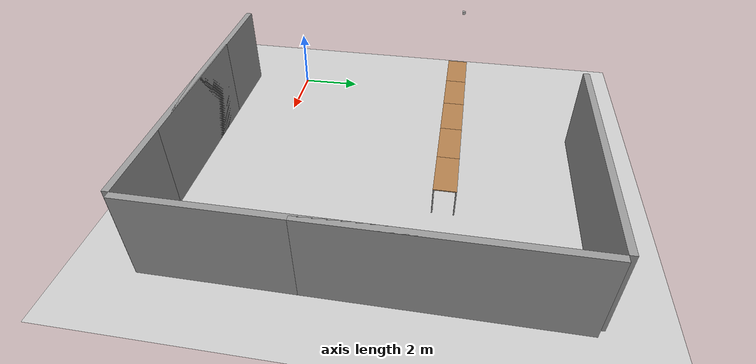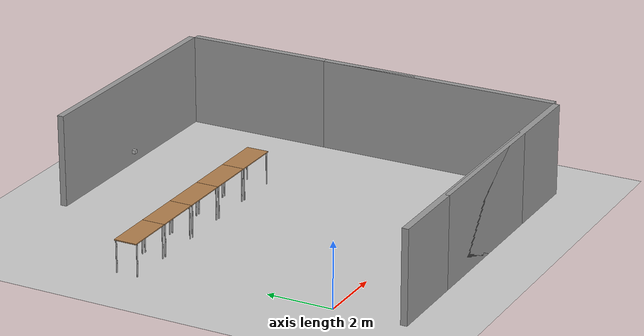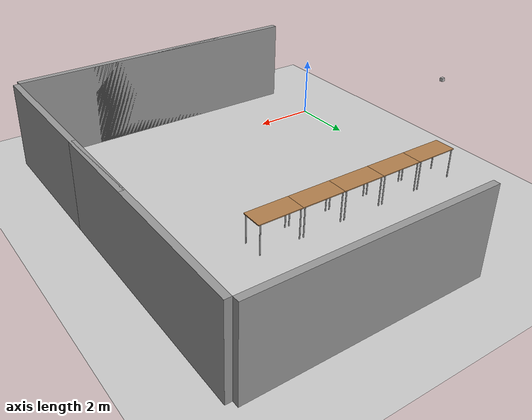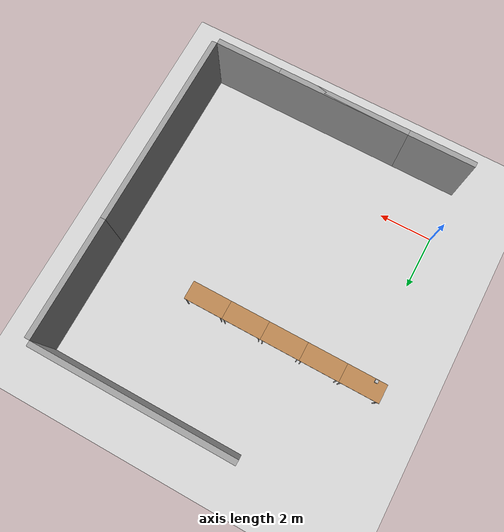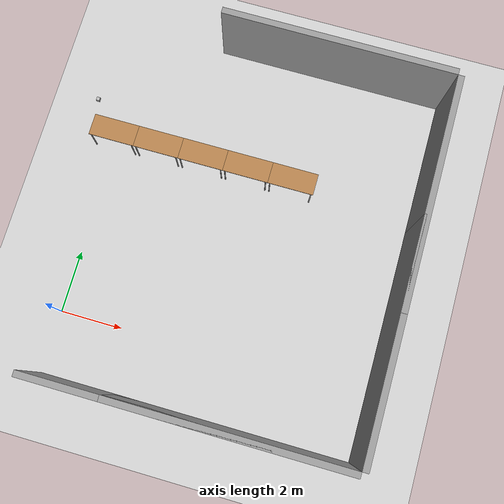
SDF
<sdf version="1.6">
 <world name="default">
  <model name="ground_plane">
   <static>1</static>
   <link name="link">
    <collision name="collision">
     <geometry><plane><normal>0 0 1</normal><size>100 100</size></plane></geometry>
     <surface>
      <contact><collide_bitmask>65535</collide_bitmask></contact>
      <friction><ode><mu>100</mu><mu2>50</mu2></ode></friction>
     </surface>
    </collision>
    <visual name="visual">
     <cast_shadows>0</cast_shadows>
     <geometry><plane><normal>0 0 1</normal><size>100 100</size></plane></geometry>
     <material>
      <script><uri>file://media/materials/scripts/gazebo.material</uri><name>Gazebo/Grey</name></script>
     </material>
    </visual>
   </link>
  </model>
  <model name="grey_wall_0">
   <static>1</static>
   <link name="link">
    <pose>0 0 1.4 0 -0 0</pose>
    <collision name="collision"><geometry><box><size>7.5 0.2 2.8</size></box></geometry></collision>
    <visual name="visual">
     <cast_shadows>0</cast_shadows>
     <geometry><box><size>7.5 0.2 2.8</size></box></geometry>
     <material>
      <script>
       <uri>model://grey_wall/materials/scripts</uri>
       <uri>model://grey_wall/materials/textures</uri>
       <name>vrc/grey_wall</name>
      </script>
     </material>
    </visual>
   </link>
   <pose>3.75 -2.1 0 0 -0 0</pose>
  </model>
  <model name="grey_wall_2">
   <static>1</static>
   <link name="link">
    <pose>0 0 1.4 0 -0 0</pose>
    <collision name="collision"><geometry><box><size>7.5 0.2 2.8</size></box></geometry></collision>
    <visual name="visual">
     <cast_shadows>0</cast_shadows>
     <geometry><box><size>7.5 0.2 2.8</size></box></geometry>
     <material>
      <script>
       <uri>model://grey_wall/materials/scripts</uri>
       <uri>model://grey_wall/materials/textures</uri>
       <name>vrc/grey_wall</name>
      </script>
     </material>
    </visual>
   </link>
   <pose>6.25 -2.1 0 0 -0 0</pose>
  </model>
  <model name="grey_wall_3_clone_clone">
   <static>1</static>
   <link name="link">
    <pose>0 0 1.4 0 -0 0</pose>
    <collision name="collision"><geometry><box><size>7.5 0.2 2.8</size></box></geometry></collision>
    <visual name="visual">
     <cast_shadows>0</cast_shadows>
     <geometry><box><size>7.5 0.2 2.8</size></box></geometry>
     <material>
      <script>
       <uri>model://grey_wall/materials/scripts</uri>
       <uri>model://grey_wall/materials/textures</uri>
       <name>vrc/grey_wall</name>
      </script>
     </material>
    </visual>
   </link>
   <pose>10.1 6.25 0 0 -0 1.5708</pose>
  </model>
  <model name="grey_wall_3_clone_clone_0">
   <static>1</static>
   <link name="link">
    <pose>0 0 1.4 0 -0 0</pose>
    <collision name="collision"><geometry><box><size>7.5 0.2 2.8</size></box></geometry></collision>
    <visual name="visual">
     <cast_shadows>0</cast_shadows>
     <geometry><box><size>7.5 0.2 2.8</size></box></geometry>
     <material>
      <script>
       <uri>model://grey_wall/materials/scripts</uri>
       <uri>model://grey_wall/materials/textures</uri>
       <name>vrc/grey_wall</name>
      </script>
     </material>
    </visual>
   </link>
   <pose>10.1 1.75 0 0 -0 1.5708</pose>
  </model>
  <model name="grey_wall_clone_0">
   <static>1</static>
   <link name="link">
    <pose>0 0 1.4 0 -0 0</pose>
    <collision name="collision"><geometry><box><size>7.5 0.2 2.8</size></box></geometry></collision>
    <visual name="visual">
     <cast_shadows>0</cast_shadows>
     <geometry><box><size>7.5 0.2 2.8</size></box></geometry>
     <material>
      <script>
       <uri>model://grey_wall/materials/scripts</uri>
       <uri>model://grey_wall/materials/textures</uri>
       <name>vrc/grey_wall</name>
      </script>
     </material>
    </visual>
   </link>
   <pose>6.25 10.1 0 0 -0 0</pose>
  </model>
  <model name="table_17">
   <static>1</static>
   <link name="link">
    <collision name="surface">
     <pose>0 0 1 0 -0 0</pose>
     <geometry><box><size>1.5 0.7 0.03</size></box></geometry>
     <surface><friction><ode><mu>0.6</mu><mu2>0.6</mu2></ode></friction></surface>
    </collision>
    <visual name="visual1">
     <pose>0 0 1 0 -0 0</pose>
     <geometry><box><size>1.5 0.7 0.03</size></box></geometry>
     <material>
      <script><uri>file://media/materials/scripts/gazebo.material</uri><name>Gazebo/Wood</name></script>
     </material>
    </visual>
    <collision name="front_left_leg">
     <pose>0.68 0.33 0.5 0 -0 0</pose>
     <geometry><cylinder><radius>0.02</radius><length>1</length></cylinder></geometry>
    </collision>
    <visual name="front_left_leg">
     <pose>0.68 0.33 0.5 0 -0 0</pose>
     <geometry><cylinder><radius>0.02</radius><length>1</length></cylinder></geometry>
     <material>
      <script><uri>file://media/materials/scripts/gazebo.material</uri><name>Gazebo/Grey</name></script>
     </material>
    </visual>
    <collision name="front_right_leg">
     <pose>0.68 -0.33 0.5 0 -0 0</pose>
     <geometry><cylinder><radius>0.02</radius><length>1</length></cylinder></geometry>
    </collision>
    <visual name="front_right_leg">
     <pose>0.68 -0.33 0.5 0 -0 0</pose>
     <geometry><cylinder><radius>0.02</radius><length>1</length></cylinder></geometry>
     <material>
      <script><uri>file://media/materials/scripts/gazebo.material</uri><name>Gazebo/Grey</name></script>
     </material>
    </visual>
    <collision name="back_right_leg">
     <pose>-0.68 -0.33 0.5 0 -0 0</pose>
     <geometry><cylinder><radius>0.02</radius><length>1</length></cylinder></geometry>
    </collision>
    <visual name="back_right_leg">
     <pose>-0.68 -0.33 0.5 0 -0 0</pose>
     <geometry><cylinder><radius>0.02</radius><length>1</length></cylinder></geometry>
     <material>
      <script><uri>file://media/materials/scripts/gazebo.material</uri><name>Gazebo/Grey</name></script>
     </material>
    </visual>
    <collision name="back_left_leg">
     <pose>-0.68 0.33 0.5 0 -0 0</pose>
     <geometry><cylinder><radius>0.02</radius><length>1</length></cylinder></geometry>
    </collision>
    <visual name="back_left_leg">
     <pose>-0.68 0.33 0.5 0 -0 0</pose>
     <geometry><cylinder><radius>0.02</radius><length>1</length></cylinder></geometry>
     <material>
      <script><uri>file://media/materials/scripts/gazebo.material</uri><name>Gazebo/Grey</name></script>
     </material>
    </visual>
   </link>
   <pose>0 6 0 0 -0 0</pose>
  </model>
  <model name="table_17_clone_3">
   <static>1</static>
   <link name="link">
    <collision name="surface">
     <pose>0 0 1 0 -0 0</pose>
     <geometry><box><size>1.5 0.7 0.03</size></box></geometry>
     <surface><friction><ode><mu>0.6</mu><mu2>0.6</mu2></ode></friction></surface>
    </collision>
    <visual name="visual1">
     <pose>0 0 1 0 -0 0</pose>
     <geometry><box><size>1.5 0.7 0.03</size></box></geometry>
     <material>
      <script><uri>file://media/materials/scripts/gazebo.material</uri><name>Gazebo/Wood</name></script>
     </material>
    </visual>
    <collision name="front_left_leg">
     <pose>0.68 0.33 0.5 0 -0 0</pose>
     <geometry><cylinder><radius>0.02</radius><length>1</length></cylinder></geometry>
    </collision>
    <visual name="front_left_leg">
     <pose>0.68 0.33 0.5 0 -0 0</pose>
     <geometry><cylinder><radius>0.02</radius><length>1</length></cylinder></geometry>
     <material>
      <script><uri>file://media/materials/scripts/gazebo.material</uri><name>Gazebo/Grey</name></script>
     </material>
    </visual>
    <collision name="front_right_leg">
     <pose>0.68 -0.33 0.5 0 -0 0</pose>
     <geometry><cylinder><radius>0.02</radius><length>1</length></cylinder></geometry>
    </collision>
    <visual name="front_right_leg">
     <pose>0.68 -0.33 0.5 0 -0 0</pose>
     <geometry><cylinder><radius>0.02</radius><length>1</length></cylinder></geometry>
     <material>
      <script><uri>file://media/materials/scripts/gazebo.material</uri><name>Gazebo/Grey</name></script>
     </material>
    </visual>
    <collision name="back_right_leg">
     <pose>-0.68 -0.33 0.5 0 -0 0</pose>
     <geometry><cylinder><radius>0.02</radius><length>1</length></cylinder></geometry>
    </collision>
    <visual name="back_right_leg">
     <pose>-0.68 -0.33 0.5 0 -0 0</pose>
     <geometry><cylinder><radius>0.02</radius><length>1</length></cylinder></geometry>
     <material>
      <script><uri>file://media/materials/scripts/gazebo.material</uri><name>Gazebo/Grey</name></script>
     </material>
    </visual>
    <collision name="back_left_leg">
     <pose>-0.68 0.33 0.5 0 -0 0</pose>
     <geometry><cylinder><radius>0.02</radius><length>1</length></cylinder></geometry>
    </collision>
    <visual name="back_left_leg">
     <pose>-0.68 0.33 0.5 0 -0 0</pose>
     <geometry><cylinder><radius>0.02</radius><length>1</length></cylinder></geometry>
     <material>
      <script><uri>file://media/materials/scripts/gazebo.material</uri><name>Gazebo/Grey</name></script>
     </material>
    </visual>
   </link>
   <pose>1.5 6 0 0 -0 0</pose>
  </model>
  <model name="table_17_clone_4">
   <static>1</static>
   <link name="link">
    <collision name="surface">
     <pose>0 0 1 0 -0 0</pose>
     <geometry><box><size>1.5 0.7 0.03</size></box></geometry>
     <surface><friction><ode><mu>0.6</mu><mu2>0.6</mu2></ode></friction></surface>
    </collision>
    <visual name="visual1">
     <pose>0 0 1 0 -0 0</pose>
     <geometry><box><size>1.5 0.7 0.03</size></box></geometry>
     <material>
      <script><uri>file://media/materials/scripts/gazebo.material</uri><name>Gazebo/Wood</name></script>
     </material>
    </visual>
    <collision name="front_left_leg">
     <pose>0.68 0.33 0.5 0 -0 0</pose>
     <geometry><cylinder><radius>0.02</radius><length>1</length></cylinder></geometry>
    </collision>
    <visual name="front_left_leg">
     <pose>0.68 0.33 0.5 0 -0 0</pose>
     <geometry><cylinder><radius>0.02</radius><length>1</length></cylinder></geometry>
     <material>
      <script><uri>file://media/materials/scripts/gazebo.material</uri><name>Gazebo/Grey</name></script>
     </material>
    </visual>
    <collision name="front_right_leg">
     <pose>0.68 -0.33 0.5 0 -0 0</pose>
     <geometry><cylinder><radius>0.02</radius><length>1</length></cylinder></geometry>
    </collision>
    <visual name="front_right_leg">
     <pose>0.68 -0.33 0.5 0 -0 0</pose>
     <geometry><cylinder><radius>0.02</radius><length>1</length></cylinder></geometry>
     <material>
      <script><uri>file://media/materials/scripts/gazebo.material</uri><name>Gazebo/Grey</name></script>
     </material>
    </visual>
    <collision name="back_right_leg">
     <pose>-0.68 -0.33 0.5 0 -0 0</pose>
     <geometry><cylinder><radius>0.02</radius><length>1</length></cylinder></geometry>
    </collision>
    <visual name="back_right_leg">
     <pose>-0.68 -0.33 0.5 0 -0 0</pose>
     <geometry><cylinder><radius>0.02</radius><length>1</length></cylinder></geometry>
     <material>
      <script><uri>file://media/materials/scripts/gazebo.material</uri><name>Gazebo/Grey</name></script>
     </material>
    </visual>
    <collision name="back_left_leg">
     <pose>-0.68 0.33 0.5 0 -0 0</pose>
     <geometry><cylinder><radius>0.02</radius><length>1</length></cylinder></geometry>
    </collision>
    <visual name="back_left_leg">
     <pose>-0.68 0.33 0.5 0 -0 0</pose>
     <geometry><cylinder><radius>0.02</radius><length>1</length></cylinder></geometry>
     <material>
      <script><uri>file://media/materials/scripts/gazebo.material</uri><name>Gazebo/Grey</name></script>
     </material>
    </visual>
   </link>
   <pose>3 6 0 0 -0 0</pose>
  </model>
  <model name="table_17_clone_5">
   <static>1</static>
   <link name="link">
    <collision name="surface">
     <pose>0 0 1 0 -0 0</pose>
     <geometry><box><size>1.5 0.7 0.03</size></box></geometry>
     <surface><friction><ode><mu>0.6</mu><mu2>0.6</mu2></ode></friction></surface>
    </collision>
    <visual name="visual1">
     <pose>0 0 1 0 -0 0</pose>
     <geometry><box><size>1.5 0.7 0.03</size></box></geometry>
     <material>
      <script><uri>file://media/materials/scripts/gazebo.material</uri><name>Gazebo/Wood</name></script>
     </material>
    </visual>
    <collision name="front_left_leg">
     <pose>0.68 0.33 0.5 0 -0 0</pose>
     <geometry><cylinder><radius>0.02</radius><length>1</length></cylinder></geometry>
    </collision>
    <visual name="front_left_leg">
     <pose>0.68 0.33 0.5 0 -0 0</pose>
     <geometry><cylinder><radius>0.02</radius><length>1</length></cylinder></geometry>
     <material>
      <script><uri>file://media/materials/scripts/gazebo.material</uri><name>Gazebo/Grey</name></script>
     </material>
    </visual>
    <collision name="front_right_leg">
     <pose>0.68 -0.33 0.5 0 -0 0</pose>
     <geometry><cylinder><radius>0.02</radius><length>1</length></cylinder></geometry>
    </collision>
    <visual name="front_right_leg">
     <pose>0.68 -0.33 0.5 0 -0 0</pose>
     <geometry><cylinder><radius>0.02</radius><length>1</length></cylinder></geometry>
     <material>
      <script><uri>file://media/materials/scripts/gazebo.material</uri><name>Gazebo/Grey</name></script>
     </material>
    </visual>
    <collision name="back_right_leg">
     <pose>-0.68 -0.33 0.5 0 -0 0</pose>
     <geometry><cylinder><radius>0.02</radius><length>1</length></cylinder></geometry>
    </collision>
    <visual name="back_right_leg">
     <pose>-0.68 -0.33 0.5 0 -0 0</pose>
     <geometry><cylinder><radius>0.02</radius><length>1</length></cylinder></geometry>
     <material>
      <script><uri>file://media/materials/scripts/gazebo.material</uri><name>Gazebo/Grey</name></script>
     </material>
    </visual>
    <collision name="back_left_leg">
     <pose>-0.68 0.33 0.5 0 -0 0</pose>
     <geometry><cylinder><radius>0.02</radius><length>1</length></cylinder></geometry>
    </collision>
    <visual name="back_left_leg">
     <pose>-0.68 0.33 0.5 0 -0 0</pose>
     <geometry><cylinder><radius>0.02</radius><length>1</length></cylinder></geometry>
     <material>
      <script><uri>file://media/materials/scripts/gazebo.material</uri><name>Gazebo/Grey</name></script>
     </material>
    </visual>
   </link>
   <pose>4.5 6 0 0 -0 0</pose>
  </model>
  <model name="table_17_clone_6">
   <static>1</static>
   <link name="link">
    <collision name="surface">
     <pose>0 0 1 0 -0 0</pose>
     <geometry><box><size>1.5 0.7 0.03</size></box></geometry>
     <surface><friction><ode><mu>0.6</mu><mu2>0.6</mu2></ode></friction></surface>
    </collision>
    <visual name="visual1">
     <pose>0 0 1 0 -0 0</pose>
     <geometry><box><size>1.5 0.7 0.03</size></box></geometry>
     <material>
      <script><uri>file://media/materials/scripts/gazebo.material</uri><name>Gazebo/Wood</name></script>
     </material>
    </visual>
    <collision name="front_left_leg">
     <pose>0.68 0.33 0.5 0 -0 0</pose>
     <geometry><cylinder><radius>0.02</radius><length>1</length></cylinder></geometry>
    </collision>
    <visual name="front_left_leg">
     <pose>0.68 0.33 0.5 0 -0 0</pose>
     <geometry><cylinder><radius>0.02</radius><length>1</length></cylinder></geometry>
     <material>
      <script><uri>file://media/materials/scripts/gazebo.material</uri><name>Gazebo/Grey</name></script>
     </material>
    </visual>
    <collision name="front_right_leg">
     <pose>0.68 -0.33 0.5 0 -0 0</pose>
     <geometry><cylinder><radius>0.02</radius><length>1</length></cylinder></geometry>
    </collision>
    <visual name="front_right_leg">
     <pose>0.68 -0.33 0.5 0 -0 0</pose>
     <geometry><cylinder><radius>0.02</radius><length>1</length></cylinder></geometry>
     <material>
      <script><uri>file://media/materials/scripts/gazebo.material</uri><name>Gazebo/Grey</name></script>
     </material>
    </visual>
    <collision name="back_right_leg">
     <pose>-0.68 -0.33 0.5 0 -0 0</pose>
     <geometry><cylinder><radius>0.02</radius><length>1</length></cylinder></geometry>
    </collision>
    <visual name="back_right_leg">
     <pose>-0.68 -0.33 0.5 0 -0 0</pose>
     <geometry><cylinder><radius>0.02</radius><length>1</length></cylinder></geometry>
     <material>
      <script><uri>file://media/materials/scripts/gazebo.material</uri><name>Gazebo/Grey</name></script>
     </material>
    </visual>
    <collision name="back_left_leg">
     <pose>-0.68 0.33 0.5 0 -0 0</pose>
     <geometry><cylinder><radius>0.02</radius><length>1</length></cylinder></geometry>
    </collision>
    <visual name="back_left_leg">
     <pose>-0.68 0.33 0.5 0 -0 0</pose>
     <geometry><cylinder><radius>0.02</radius><length>1</length></cylinder></geometry>
     <material>
      <script><uri>file://media/materials/scripts/gazebo.material</uri><name>Gazebo/Grey</name></script>
     </material>
    </visual>
   </link>
   <pose>6 6 0 0 -0 0</pose>
  </model>
  <model name="distorted_camera">
   <link name="link">
    <pose>0.05 0.05 0.05 0 -0 0</pose>
    <inertial>
     <mass>0.1</mass>
     <inertia>
      <ixx>0.000166667</ixx>
      <iyy>0.000166667</iyy>
      <izz>0.000166667</izz>
      <ixy>0</ixy>
      <ixz>0</ixz>
      <iyz>0</iyz>
     </inertia>
    </inertial>
    <collision name="collision"><geometry><box><size>0.1 0.1 0.1</size></box></geometry></collision>
    <visual name="visual"><geometry><box><size>0.1 0.1 0.1</size></box></geometry></visual>
    <gravity>0</gravity>
    <sensor name="camera" type="camera">
     <camera name="__default__">
      <horizontal_fov>1.047</horizontal_fov>
      <image><width>256</width><height>256</height></image>
      <clip><near>0.1</near><far>100</far></clip>
     </camera>
     <plugin name="camera_controller" filename="libgazebo_ros_camera.so">
      <alwaysOn>1</alwaysOn>
      <updateRate>0.0</updateRate>
      <cameraName>top_down_cam</cameraName>
      <imageTopicName>image_raw</imageTopicName>
      <cameraInfoTopicName>camera_info</cameraInfoTopicName>
      <frameName>camera_link</frameName>
      <hackBaseline>0.07</hackBaseline>
      <distortionK1>0.0</distortionK1>
      <distortionK2>0.0</distortionK2>
      <distortionK3>0.0</distortionK3>
      <distortionT1>0.0</distortionT1>
      <distortionT2>0.0</distortionT2>
     </plugin>
     <always_on>1</always_on>
     <update_rate>30</update_rate>
     <visualize>1</visualize>
    </sensor>
   </link>
   <pose>0 6 3.46489 3e-06 1.57079 1.57079</pose>
  </model>
 </world>
</sdf>
